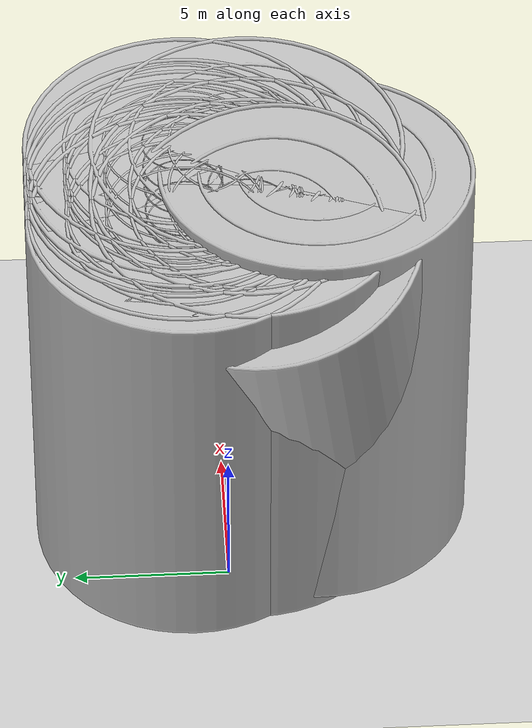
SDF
<sdf version="1.4">
 <world name="default">
  <model name="ground_plane">
   <static>1</static>
   <link name="link">
    <collision name="collision">
     <geometry><plane><normal>0 0 1</normal><size>100 100</size></plane></geometry>
     <surface><friction><ode><mu>100</mu><mu2>50</mu2></ode></friction></surface>
    </collision>
    <visual name="visual">
     <cast_shadows>0</cast_shadows>
     <geometry><plane><normal>0 0 1</normal><size>100 100</size></plane></geometry>
     <material>
      <script><uri>file://media/materials/scripts/gazebo.material</uri><name>Gazebo/Grey</name></script>
     </material>
    </visual>
    <velocity_decay><linear>0</linear><angular>0</angular></velocity_decay>
   </link>
  </model>
  <model name="Corn Stalk_0">
   <link name="link">
    <collision name="collision">
     <geometry><mesh><scale>1 1 1</scale><uri>model://corn/meshes/corn.dae</uri></mesh></geometry>
    </collision>
    <visual name="visual">
     <geometry><mesh><scale>1 1 1</scale><uri>model://corn/meshes/corn.dae</uri></mesh></geometry>
    </visual>
    <velocity_decay><linear>0</linear><angular>0</angular></velocity_decay>
    <inertial>
     <inertia><ixx>1</ixx><ixy>0</ixy><ixz>0</ixz><iyy>1</iyy><iyz>0</iyz><izz>1</izz></inertia>
     <mass>1</mass>
    </inertial>
   </link>
   <pose>6.00284 -1.01701 5.4e-05 0.001158 -0.002849 0.295758</pose>
   <static>0</static>
  </model>
  <model name="Corn Stalk_2">
   <link name="link">
    <collision name="collision">
     <geometry><mesh><scale>1 1 1</scale><uri>model://corn/meshes/corn.dae</uri></mesh></geometry>
    </collision>
    <visual name="visual">
     <geometry><mesh><scale>1 1 1</scale><uri>model://corn/meshes/corn.dae</uri></mesh></geometry>
    </visual>
    <velocity_decay><linear>0</linear><angular>0</angular></velocity_decay>
    <inertial>
     <inertia><ixx>1</ixx><ixy>0</ixy><ixz>0</ixz><iyy>1</iyy><iyz>0</iyz><izz>1</izz></inertia>
     <mass>1</mass>
    </inertial>
   </link>
   <pose>4 -1 -9e-06 4e-06 7e-06 3.23117e-27</pose>
   <static>0</static>
  </model>
  <model name="Corn Stalk_3">
   <link name="link">
    <collision name="collision">
     <geometry><mesh><scale>1 1 1</scale><uri>model://corn/meshes/corn.dae</uri></mesh></geometry>
    </collision>
    <visual name="visual">
     <geometry><mesh><scale>1 1 1</scale><uri>model://corn/meshes/corn.dae</uri></mesh></geometry>
    </visual>
    <velocity_decay><linear>0</linear><angular>0</angular></velocity_decay>
    <inertial>
     <inertia><ixx>1</ixx><ixy>0</ixy><ixz>0</ixz><iyy>1</iyy><iyz>0</iyz><izz>1</izz></inertia>
     <mass>1</mass>
    </inertial>
   </link>
   <pose>3 -1 0 5e-06 3e-06 -3.23117e-27</pose>
   <static>0</static>
  </model>
  <model name="Corn Stalk_25">
   <link name="link">
    <collision name="collision">
     <geometry><mesh><scale>1 1 1</scale><uri>model://corn/meshes/corn.dae</uri></mesh></geometry>
    </collision>
    <visual name="visual">
     <geometry><mesh><scale>1 1 1</scale><uri>model://corn/meshes/corn.dae</uri></mesh></geometry>
    </visual>
    <velocity_decay><linear>0</linear><angular>0</angular></velocity_decay>
    <inertial>
     <inertia><ixx>1</ixx><ixy>0</ixy><ixz>0</ixz><iyy>1</iyy><iyz>0</iyz><izz>1</izz></inertia>
     <mass>1</mass>
    </inertial>
   </link>
   <pose>2.40132 1 -9e-06 1e-05 2e-06 0</pose>
   <static>0</static>
  </model>
  <model name="Corn Stalk_27">
   <link name="link">
    <collision name="collision">
     <geometry><mesh><scale>1 1 1</scale><uri>model://corn/meshes/corn.dae</uri></mesh></geometry>
    </collision>
    <visual name="visual">
     <geometry><mesh><scale>1 1 1</scale><uri>model://corn/meshes/corn.dae</uri></mesh></geometry>
    </visual>
    <velocity_decay><linear>0</linear><angular>0</angular></velocity_decay>
    <inertial>
     <inertia><ixx>1</ixx><ixy>0</ixy><ixz>0</ixz><iyy>1</iyy><iyz>0</iyz><izz>1</izz></inertia>
     <mass>1</mass>
    </inertial>
   </link>
   <pose>3 1 -1e-05 7e-06 2e-06 3.23117e-27</pose>
   <static>0</static>
  </model>
  <model name="Corn Stalk_28">
   <link name="link">
    <collision name="collision">
     <geometry><mesh><scale>1 1 1</scale><uri>model://corn/meshes/corn.dae</uri></mesh></geometry>
    </collision>
    <visual name="visual">
     <geometry><mesh><scale>1 1 1</scale><uri>model://corn/meshes/corn.dae</uri></mesh></geometry>
    </visual>
    <velocity_decay><linear>0</linear><angular>0</angular></velocity_decay>
    <inertial>
     <inertia><ixx>1</ixx><ixy>0</ixy><ixz>0</ixz><iyy>1</iyy><iyz>0</iyz><izz>1</izz></inertia>
     <mass>1</mass>
    </inertial>
   </link>
   <pose>4 1 -1e-05 9e-06 -1e-06 0</pose>
   <static>0</static>
  </model>
  <model name="Corn Stalk_29">
   <link name="link">
    <collision name="collision">
     <geometry><mesh><scale>1 1 1</scale><uri>model://corn/meshes/corn.dae</uri></mesh></geometry>
    </collision>
    <visual name="visual">
     <geometry><mesh><scale>1 1 1</scale><uri>model://corn/meshes/corn.dae</uri></mesh></geometry>
    </visual>
    <velocity_decay><linear>0</linear><angular>0</angular></velocity_decay>
    <inertial>
     <inertia><ixx>1</ixx><ixy>0</ixy><ixz>0</ixz><iyy>1</iyy><iyz>0</iyz><izz>1</izz></inertia>
     <mass>1</mass>
    </inertial>
   </link>
   <pose>4.44095 1 -1e-05 8e-06 3e-06 3.23117e-27</pose>
   <static>0</static>
  </model>
  <model name="Corn Stalk_30">
   <link name="link">
    <collision name="collision">
     <geometry><mesh><scale>1 1 1</scale><uri>model://corn/meshes/corn.dae</uri></mesh></geometry>
    </collision>
    <visual name="visual">
     <geometry><mesh><scale>1 1 1</scale><uri>model://corn/meshes/corn.dae</uri></mesh></geometry>
    </visual>
    <velocity_decay><linear>0</linear><angular>0</angular></velocity_decay>
    <inertial>
     <inertia><ixx>1</ixx><ixy>0</ixy><ixz>0</ixz><iyy>1</iyy><iyz>0</iyz><izz>1</izz></inertia>
     <mass>1</mass>
    </inertial>
   </link>
   <pose>5 1 0 4e-06 8e-06 0</pose>
   <static>0</static>
  </model>
  <model name="Corn Stalk_31">
   <link name="link">
    <collision name="collision">
     <geometry><mesh><scale>1 1 1</scale><uri>model://corn/meshes/corn.dae</uri></mesh></geometry>
    </collision>
    <visual name="visual">
     <geometry><mesh><scale>1 1 1</scale><uri>model://corn/meshes/corn.dae</uri></mesh></geometry>
    </visual>
    <velocity_decay><linear>0</linear><angular>0</angular></velocity_decay>
    <inertial>
     <inertia><ixx>1</ixx><ixy>0</ixy><ixz>0</ixz><iyy>1</iyy><iyz>0</iyz><izz>1</izz></inertia>
     <mass>1</mass>
    </inertial>
   </link>
   <pose>6 1 0 7e-06 3e-06 0</pose>
   <static>0</static>
  </model>
  <model name="Corn Stalk_45">
   <link name="link">
    <collision name="collision">
     <geometry><mesh><scale>1 1 1</scale><uri>model://corn/meshes/corn.dae</uri></mesh></geometry>
    </collision>
    <visual name="visual">
     <geometry><mesh><scale>1 1 1</scale><uri>model://corn/meshes/corn.dae</uri></mesh></geometry>
    </visual>
    <velocity_decay><linear>0</linear><angular>0</angular></velocity_decay>
    <inertial>
     <inertia><ixx>1</ixx><ixy>0</ixy><ixz>0</ixz><iyy>1</iyy><iyz>0</iyz><izz>1</izz></inertia>
     <mass>1</mass>
    </inertial>
   </link>
   <pose>3.12811 -3.05199 0.001633 -0.077915 0.049109 -1.07778</pose>
   <static>0</static>
  </model>
  <model name="Corn Stalk_49">
   <link name="link">
    <collision name="collision">
     <geometry><mesh><scale>1 1 1</scale><uri>model://corn/meshes/corn.dae</uri></mesh></geometry>
    </collision>
    <visual name="visual">
     <geometry><mesh><scale>1 1 1</scale><uri>model://corn/meshes/corn.dae</uri></mesh></geometry>
    </visual>
    <velocity_decay><linear>0</linear><angular>0</angular></velocity_decay>
    <inertial>
     <inertia><ixx>1</ixx><ixy>0</ixy><ixz>0</ixz><iyy>1</iyy><iyz>0</iyz><izz>1</izz></inertia>
     <mass>1</mass>
    </inertial>
   </link>
   <pose>5.05389 -3.03775 0.004334 -0.145985 -0.200552 0.140952</pose>
   <static>0</static>
  </model>
 </world>
</sdf>
